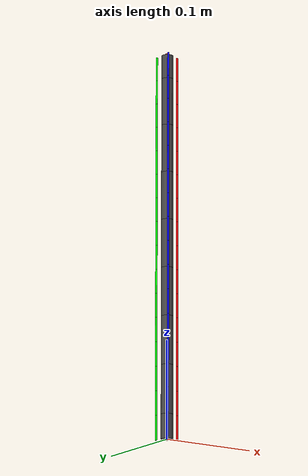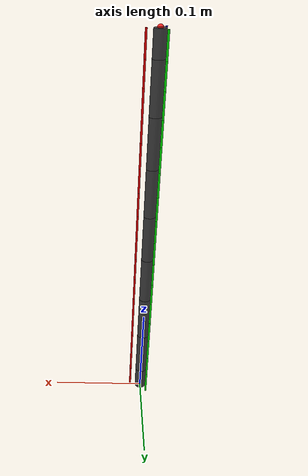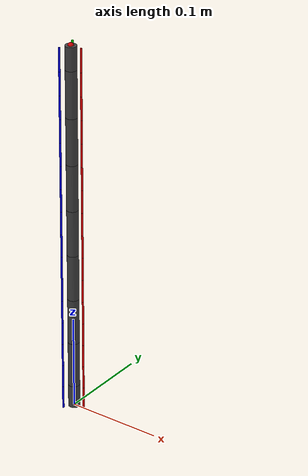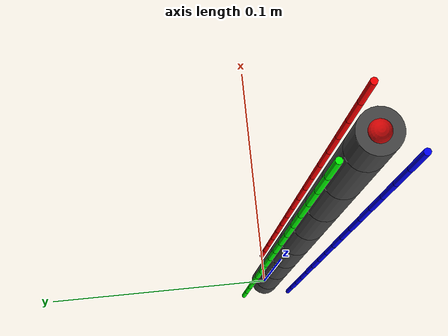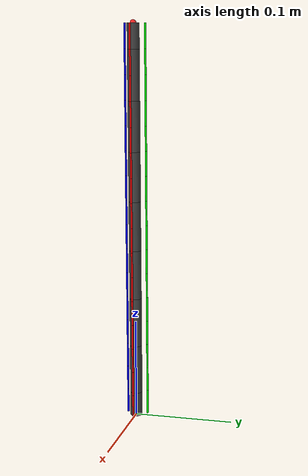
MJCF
<?xml version="1.0" ?>
<mujoco>
    <compiler angle="radian" autolimits="true"/>
    <option gravity="0 0 0" noslip_iterations="1"/>
    <asset>
        <texture type="skybox" builtin="gradient" rgb1="1 1 1" rgb2=".6 .8 1" width="256" height="256"/>
    </asset>
    <default>
        <geom contype="0" conaffinity="0" condim="1" friction="1.0 0.005 0.0001"/>
        <default class="tdcr_collision">
            <geom contype="1" conaffinity="1" condim="3" friction="1.0 0.005 0.0001" solimp="0.8 0.95 0.001"/>
        </default>
        <default class="segment_0_x_joint">
            <joint type="hinge" axis="0 0 1" stiffness="2.4569421166695347" damping="0.05" limited="false"/>
        </default>
        <default class="segment_0_y_joint">
            <joint type="hinge" axis="0 1 0" stiffness="3.5625660691708254" damping="0.05" limited="false"/>
        </default>
        <default class="segment_0_z_joint">
            <joint type="hinge" axis="1 0 0" stiffness="3.5625660691708254" damping="0.05" limited="false"/>
        </default>
    </default>
    <worldbody>
        <body name="mocap_base" pos="0 0 0" mocap="true">
            <body name="link_0" pos="0 0 0">
                <geom fromto="0 0 0 0 0 0.025000000" size="0.006000000" type="cylinder" rgba="0.274 0.274 0.274 1.000" mass="0.000565486677646" name="geom_0" class="tdcr_collision"/>
                <site name="l_0_s0_s1_t0" pos="0.012000000 0.000000000 0" rgba="0 0 0 0"/>
                <site name="l_0_s0_s2_t0" pos="0.012000000 0.000000000 0.025000000" rgba="0 0 0 0"/>
                <site name="l_0_s0_s1_t1" pos="-0.006000000 0.010392305 0" rgba="0 0 0 0"/>
                <site name="l_0_s0_s2_t1" pos="-0.006000000 0.010392305 0.025000000" rgba="0 0 0 0"/>
                <site name="l_0_s0_s1_t2" pos="-0.006000000 -0.010392305 0" rgba="0 0 0 0"/>
                <site name="l_0_s0_s2_t2" pos="-0.006000000 -0.010392305 0.025000000" rgba="0 0 0 0"/>
                <body name="link_1" pos="0 0 0.025000000">
                    <geom fromto="0 0 0 0 0 0.050000000" size="0.006000000" type="cylinder" rgba="0.274 0.274 0.274 1.000" mass="0.00113097335529" name="geom_1" class="tdcr_collision"/>
                    <joint class="segment_0_x_joint" name="joint_1_x"/>
                    <joint class="segment_0_y_joint" name="joint_1_y"/>
                    <joint class="segment_0_z_joint" name="joint_1_z"/>
                    <site name="l_1_s0_s1_t0" pos="0.012000000 0.000000000 0.025000000" rgba="0 0 0 0"/>
                    <site name="l_1_s0_s2_t0" pos="0.012000000 0.000000000 0.050000000" rgba="0 0 0 0"/>
                    <site name="l_1_s0_s1_t1" pos="-0.006000000 0.010392305 0.025000000" rgba="0 0 0 0"/>
                    <site name="l_1_s0_s2_t1" pos="-0.006000000 0.010392305 0.050000000" rgba="0 0 0 0"/>
                    <site name="l_1_s0_s1_t2" pos="-0.006000000 -0.010392305 0.025000000" rgba="0 0 0 0"/>
                    <site name="l_1_s0_s2_t2" pos="-0.006000000 -0.010392305 0.050000000" rgba="0 0 0 0"/>
                    <body name="link_2" pos="0 0 0.050000000">
                        <geom fromto="0 0 0 0 0 0.050000000" size="0.006000000" type="cylinder" rgba="0.274 0.274 0.274 1.000" mass="0.00113097335529" name="geom_2" class="tdcr_collision"/>
                        <joint class="segment_0_x_joint" name="joint_2_x"/>
                        <joint class="segment_0_y_joint" name="joint_2_y"/>
                        <joint class="segment_0_z_joint" name="joint_2_z"/>
                        <site name="l_2_s0_s1_t0" pos="0.012000000 0.000000000 0.025000000" rgba="0 0 0 0"/>
                        <site name="l_2_s0_s2_t0" pos="0.012000000 0.000000000 0.050000000" rgba="0 0 0 0"/>
                        <site name="l_2_s0_s1_t1" pos="-0.006000000 0.010392305 0.025000000" rgba="0 0 0 0"/>
                        <site name="l_2_s0_s2_t1" pos="-0.006000000 0.010392305 0.050000000" rgba="0 0 0 0"/>
                        <site name="l_2_s0_s1_t2" pos="-0.006000000 -0.010392305 0.025000000" rgba="0 0 0 0"/>
                        <site name="l_2_s0_s2_t2" pos="-0.006000000 -0.010392305 0.050000000" rgba="0 0 0 0"/>
                        <body name="link_3" pos="0 0 0.050000000">
                            <geom fromto="0 0 0 0 0 0.050000000" size="0.006000000" type="cylinder" rgba="0.274 0.274 0.274 1.000" mass="0.00113097335529" name="geom_3" class="tdcr_collision"/>
                            <joint class="segment_0_x_joint" name="joint_3_x"/>
                            <joint class="segment_0_y_joint" name="joint_3_y"/>
                            <joint class="segment_0_z_joint" name="joint_3_z"/>
                            <site name="l_3_s0_s1_t0" pos="0.012000000 0.000000000 0.025000000" rgba="0 0 0 0"/>
                            <site name="l_3_s0_s2_t0" pos="0.012000000 0.000000000 0.050000000" rgba="0 0 0 0"/>
                            <site name="l_3_s0_s1_t1" pos="-0.006000000 0.010392305 0.025000000" rgba="0 0 0 0"/>
                            <site name="l_3_s0_s2_t1" pos="-0.006000000 0.010392305 0.050000000" rgba="0 0 0 0"/>
                            <site name="l_3_s0_s1_t2" pos="-0.006000000 -0.010392305 0.025000000" rgba="0 0 0 0"/>
                            <site name="l_3_s0_s2_t2" pos="-0.006000000 -0.010392305 0.050000000" rgba="0 0 0 0"/>
                            <body name="link_4" pos="0 0 0.050000000">
                                <geom fromto="0 0 0 0 0 0.050000000" size="0.006000000" type="cylinder" rgba="0.274 0.274 0.274 1.000" mass="0.00113097335529" name="geom_4" class="tdcr_collision"/>
                                <joint class="segment_0_x_joint" name="joint_4_x"/>
                                <joint class="segment_0_y_joint" name="joint_4_y"/>
                                <joint class="segment_0_z_joint" name="joint_4_z"/>
                                <site name="l_4_s0_s1_t0" pos="0.012000000 0.000000000 0.025000000" rgba="0 0 0 0"/>
                                <site name="l_4_s0_s2_t0" pos="0.012000000 0.000000000 0.050000000" rgba="0 0 0 0"/>
                                <site name="l_4_s0_s1_t1" pos="-0.006000000 0.010392305 0.025000000" rgba="0 0 0 0"/>
                                <site name="l_4_s0_s2_t1" pos="-0.006000000 0.010392305 0.050000000" rgba="0 0 0 0"/>
                                <site name="l_4_s0_s1_t2" pos="-0.006000000 -0.010392305 0.025000000" rgba="0 0 0 0"/>
                                <site name="l_4_s0_s2_t2" pos="-0.006000000 -0.010392305 0.050000000" rgba="0 0 0 0"/>
                                <body name="link_5" pos="0 0 0.050000000">
                                    <geom fromto="0 0 0 0 0 0.050000000" size="0.006000000" type="cylinder" rgba="0.274 0.274 0.274 1.000" mass="0.00113097335529" name="geom_5" class="tdcr_collision"/>
                                    <joint class="segment_0_x_joint" name="joint_5_x"/>
                                    <joint class="segment_0_y_joint" name="joint_5_y"/>
                                    <joint class="segment_0_z_joint" name="joint_5_z"/>
                                    <site name="l_5_s0_s1_t0" pos="0.012000000 0.000000000 0.025000000" rgba="0 0 0 0"/>
                                    <site name="l_5_s0_s2_t0" pos="0.012000000 0.000000000 0.050000000" rgba="0 0 0 0"/>
                                    <site name="l_5_s0_s1_t1" pos="-0.006000000 0.010392305 0.025000000" rgba="0 0 0 0"/>
                                    <site name="l_5_s0_s2_t1" pos="-0.006000000 0.010392305 0.050000000" rgba="0 0 0 0"/>
                                    <site name="l_5_s0_s1_t2" pos="-0.006000000 -0.010392305 0.025000000" rgba="0 0 0 0"/>
                                    <site name="l_5_s0_s2_t2" pos="-0.006000000 -0.010392305 0.050000000" rgba="0 0 0 0"/>
                                    <body name="link_6" pos="0 0 0.050000000">
                                        <geom fromto="0 0 0 0 0 0.050000000" size="0.006000000" type="cylinder" rgba="0.274 0.274 0.274 1.000" mass="0.00113097335529" name="geom_6" class="tdcr_collision"/>
                                        <joint class="segment_0_x_joint" name="joint_6_x"/>
                                        <joint class="segment_0_y_joint" name="joint_6_y"/>
                                        <joint class="segment_0_z_joint" name="joint_6_z"/>
                                        <site name="l_6_s0_s1_t0" pos="0.012000000 0.000000000 0.025000000" rgba="0 0 0 0"/>
                                        <site name="l_6_s0_s2_t0" pos="0.012000000 0.000000000 0.050000000" rgba="0 0 0 0"/>
                                        <site name="l_6_s0_s1_t1" pos="-0.006000000 0.010392305 0.025000000" rgba="0 0 0 0"/>
                                        <site name="l_6_s0_s2_t1" pos="-0.006000000 0.010392305 0.050000000" rgba="0 0 0 0"/>
                                        <site name="l_6_s0_s1_t2" pos="-0.006000000 -0.010392305 0.025000000" rgba="0 0 0 0"/>
                                        <site name="l_6_s0_s2_t2" pos="-0.006000000 -0.010392305 0.050000000" rgba="0 0 0 0"/>
                                        <body name="link_7" pos="0 0 0.050000000">
                                            <geom fromto="0 0 0 0 0 0.050000000" size="0.006000000" type="cylinder" rgba="0.274 0.274 0.274 1.000" mass="0.00113097335529" name="geom_7" class="tdcr_collision"/>
                                            <joint class="segment_0_x_joint" name="joint_7_x"/>
                                            <joint class="segment_0_y_joint" name="joint_7_y"/>
                                            <joint class="segment_0_z_joint" name="joint_7_z"/>
                                            <site name="l_7_s0_s1_t0" pos="0.012000000 0.000000000 0.025000000" rgba="0 0 0 0"/>
                                            <site name="l_7_s0_s2_t0" pos="0.012000000 0.000000000 0.050000000" rgba="0 0 0 0"/>
                                            <site name="l_7_s0_s1_t1" pos="-0.006000000 0.010392305 0.025000000" rgba="0 0 0 0"/>
                                            <site name="l_7_s0_s2_t1" pos="-0.006000000 0.010392305 0.050000000" rgba="0 0 0 0"/>
                                            <site name="l_7_s0_s1_t2" pos="-0.006000000 -0.010392305 0.025000000" rgba="0 0 0 0"/>
                                            <site name="l_7_s0_s2_t2" pos="-0.006000000 -0.010392305 0.050000000" rgba="0 0 0 0"/>
                                            <body name="link_8" pos="0 0 0.050000000">
                                                <geom fromto="0 0 0 0 0 0.025000000" size="0.006000000" type="cylinder" rgba="0.274 0.274 0.274 1.000" mass="0.000565486677646" name="geom_8" class="tdcr_collision"/>
                                                <joint class="segment_0_x_joint" name="joint_8_x"/>
                                                <joint class="segment_0_y_joint" name="joint_8_y"/>
                                                <joint class="segment_0_z_joint" name="joint_8_z"/>
                                                <site name="l_8_s0_s2_t0" pos="0.012000000 0.000000000 0.025000000" rgba="0 0 0 0"/>
                                                <site name="l_8_s0_s2_t1" pos="-0.006000000 0.010392305 0.025000000" rgba="0 0 0 0"/>
                                                <site name="l_8_s0_s2_t2" pos="-0.006000000 -0.010392305 0.025000000" rgba="0 0 0 0"/>
                                                <body name="EE_pos" pos="0 0 0.025000000">
                                                    <site name="force_site_tip" pos="0 0 0" size="0.003" rgba="1 0 0 0.8" type="sphere"/>
                                                </body>
                                            </body>
                                        </body>
                                    </body>
                                </body>
                            </body>
                        </body>
                    </body>
                </body>
            </body>
        </body>
    </worldbody>
    <tendon>
        <spatial name="seg_0_tendon_0" width="0.001" rgba="1 0 0 1">
            <site site="l_0_s0_s1_t0"/>
            <site site="l_0_s0_s2_t0"/>
            <site site="l_1_s0_s1_t0"/>
            <site site="l_1_s0_s2_t0"/>
            <site site="l_2_s0_s1_t0"/>
            <site site="l_2_s0_s2_t0"/>
            <site site="l_3_s0_s1_t0"/>
            <site site="l_3_s0_s2_t0"/>
            <site site="l_4_s0_s1_t0"/>
            <site site="l_4_s0_s2_t0"/>
            <site site="l_5_s0_s1_t0"/>
            <site site="l_5_s0_s2_t0"/>
            <site site="l_6_s0_s1_t0"/>
            <site site="l_6_s0_s2_t0"/>
            <site site="l_7_s0_s1_t0"/>
            <site site="l_7_s0_s2_t0"/>
            <site site="l_8_s0_s2_t0"/>
        </spatial>
        <spatial name="seg_0_tendon_1" width="0.001" rgba="0 1 0 1">
            <site site="l_0_s0_s1_t1"/>
            <site site="l_0_s0_s2_t1"/>
            <site site="l_1_s0_s1_t1"/>
            <site site="l_1_s0_s2_t1"/>
            <site site="l_2_s0_s1_t1"/>
            <site site="l_2_s0_s2_t1"/>
            <site site="l_3_s0_s1_t1"/>
            <site site="l_3_s0_s2_t1"/>
            <site site="l_4_s0_s1_t1"/>
            <site site="l_4_s0_s2_t1"/>
            <site site="l_5_s0_s1_t1"/>
            <site site="l_5_s0_s2_t1"/>
            <site site="l_6_s0_s1_t1"/>
            <site site="l_6_s0_s2_t1"/>
            <site site="l_7_s0_s1_t1"/>
            <site site="l_7_s0_s2_t1"/>
            <site site="l_8_s0_s2_t1"/>
        </spatial>
        <spatial name="seg_0_tendon_2" width="0.001" rgba="0 0 1 1">
            <site site="l_0_s0_s1_t2"/>
            <site site="l_0_s0_s2_t2"/>
            <site site="l_1_s0_s1_t2"/>
            <site site="l_1_s0_s2_t2"/>
            <site site="l_2_s0_s1_t2"/>
            <site site="l_2_s0_s2_t2"/>
            <site site="l_3_s0_s1_t2"/>
            <site site="l_3_s0_s2_t2"/>
            <site site="l_4_s0_s1_t2"/>
            <site site="l_4_s0_s2_t2"/>
            <site site="l_5_s0_s1_t2"/>
            <site site="l_5_s0_s2_t2"/>
            <site site="l_6_s0_s1_t2"/>
            <site site="l_6_s0_s2_t2"/>
            <site site="l_7_s0_s1_t2"/>
            <site site="l_7_s0_s2_t2"/>
            <site site="l_8_s0_s2_t2"/>
        </spatial>
    </tendon>
    <actuator>
        <motor name="seg_0_ten_0" tendon="seg_0_tendon_0" gear="1" forcelimited="true" forcerange="-10 0"/>
        <motor name="seg_0_ten_1" tendon="seg_0_tendon_1" gear="1" forcelimited="true" forcerange="-10 0"/>
        <motor name="seg_0_ten_2" tendon="seg_0_tendon_2" gear="1" forcelimited="true" forcerange="-10 0"/>
    </actuator>
    <keyframe>
        <key name="pretension" ctrl="-0 -0 -0"/>
    </keyframe>
    <contact>
        <exclude body1="link_0" body2="link_1"/>
        <exclude body1="link_0" body2="link_2"/>
        <exclude body1="link_0" body2="link_3"/>
        <exclude body1="link_0" body2="link_4"/>
        <exclude body1="link_0" body2="link_5"/>
        <exclude body1="link_0" body2="link_6"/>
        <exclude body1="link_0" body2="link_7"/>
        <exclude body1="link_0" body2="link_8"/>
        <exclude body1="link_1" body2="link_2"/>
        <exclude body1="link_1" body2="link_3"/>
        <exclude body1="link_1" body2="link_4"/>
        <exclude body1="link_1" body2="link_5"/>
        <exclude body1="link_1" body2="link_6"/>
        <exclude body1="link_1" body2="link_7"/>
        <exclude body1="link_1" body2="link_8"/>
        <exclude body1="link_2" body2="link_3"/>
        <exclude body1="link_2" body2="link_4"/>
        <exclude body1="link_2" body2="link_5"/>
        <exclude body1="link_2" body2="link_6"/>
        <exclude body1="link_2" body2="link_7"/>
        <exclude body1="link_2" body2="link_8"/>
        <exclude body1="link_3" body2="link_4"/>
        <exclude body1="link_3" body2="link_5"/>
        <exclude body1="link_3" body2="link_6"/>
        <exclude body1="link_3" body2="link_7"/>
        <exclude body1="link_3" body2="link_8"/>
        <exclude body1="link_4" body2="link_5"/>
        <exclude body1="link_4" body2="link_6"/>
        <exclude body1="link_4" body2="link_7"/>
        <exclude body1="link_4" body2="link_8"/>
        <exclude body1="link_5" body2="link_6"/>
        <exclude body1="link_5" body2="link_7"/>
        <exclude body1="link_5" body2="link_8"/>
        <exclude body1="link_6" body2="link_7"/>
        <exclude body1="link_6" body2="link_8"/>
        <exclude body1="link_7" body2="link_8"/>
    </contact>
</mujoco>
